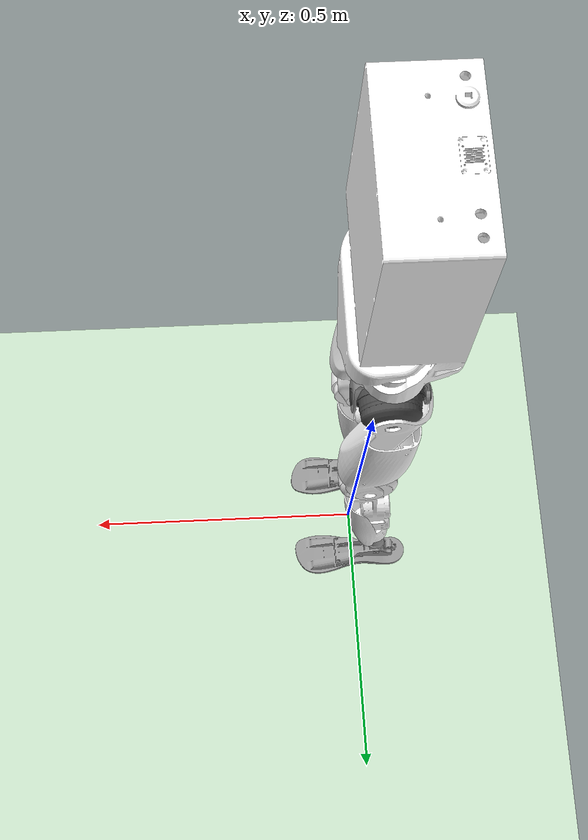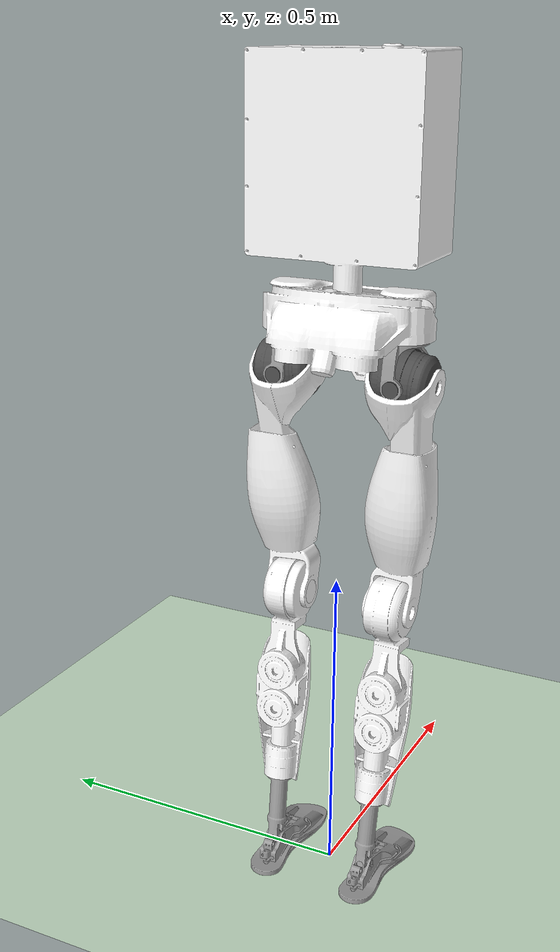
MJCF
<mujoco model="fdrobot_t1">
  <compiler angle="radian" meshdir="../meshes" autolimits="true" discardvisual="false"/>
  <option timestep='0.001' iterations='50' solver='PGS' gravity='0 0 -9.81'>
  <flag frictionloss="enable"/>
  </option>
  <size njmax="500" nconmax="100" />

  <default>
    <joint limited="true" pos="0 0 0"/>
    <motor ctrllimited='true'/>
    <geom friction='1.0 1.0 1.0'/>
    <default class="visual">
      <geom group="0" conaffinity="0" contype="0" condim='1' type="mesh"/>
    </default>
    <default class="collision">
      <geom group="1" condim="3" type="mesh"/>
    </default>
  </default>

  <asset>
    <mesh name="base_link" file="base_link_half.STL"/>
    <mesh name="R_hipY_Link" file="R_hipY_Link.STL"/>
    <mesh name="R_hipR_Link" file="R_hipR_Link.STL"/>
    <mesh name="R_hipP_Link" file="R_hipP_Link.STL"/>
    <mesh name="R_knee_Link" file="R_knee_Link.STL"/>
    <mesh name="R_ankleY_Link" file="R_ankleY_Link.STL"/>
    <mesh name="R_ankleR_Link" file="R_ankleR_Link.STL"/>
    <mesh name="R_ankleP_Link" file="R_ankleP_Link.STL"/>
    <mesh name="R_ankleP_Link_c" file="R_ankleP_Link.obj"/>
    <mesh name="L_hipY_Link" file="L_hipY_Link.STL"/>
    <mesh name="L_hipR_Link" file="L_hipR_Link.STL"/>
    <mesh name="L_hipP_Link" file="L_hipP_Link.STL"/>
    <mesh name="L_knee_Link" file="L_knee_Link.STL"/>
    <mesh name="L_ankleY_Link" file="L_ankleY_Link.STL"/>
    <mesh name="L_ankleR_Link" file="L_ankleR_Link.STL"/>
    <mesh name="L_ankleP_Link" file="L_ankleP_Link.STL"/>
    <mesh name="L_ankleP_Link_c" file="L_ankleP_Link.obj"/>
    <texture builtin="gradient" height="100" rgb1=".4 .5 .6" rgb2="0 0 0" type="skybox" width="100"/>
    <texture name="texplane" type="2d" builtin="checker" rgb1=".2 .3 .4" rgb2=".1 0.15 0.2" width="100" height="100"/>
    <material name="MatPlane" reflectance="0.5" texture="texplane" texrepeat="1 1" texuniform="true"/>
  </asset>

  <contact>
    <exclude body1="base_link" body2="R_hipY_Link" />
    <exclude body1="base_link" body2="R_hipR_Link" />
    <exclude body1="base_link" body2="R_hipP_Link" />
    <exclude body1="base_link" body2="L_hipY_Link" />
    <exclude body1="base_link" body2="L_hipR_Link" />
    <exclude body1="base_link" body2="L_hipP_Link" />
    <exclude body1="R_hipP_Link" body2="R_hipY_Link" />
    <exclude body1="L_hipP_Link" body2="L_hipY_Link" />
    <exclude body1="R_ankleY_Link" body2="R_ankleP_Link" />
    <exclude body1="L_ankleY_Link" body2="L_ankleP_Link" />
  </contact>

  <worldbody>
    <geom name="floor" friction="1 .8 .8" pos="0 0 0" size="500 500 0.125" type="plane" material="MatPlane" condim="3" conaffinity="1" contype="1" group="2" rgba="0.8 0.9 0.8 1"></geom>
    <light cutoff="100" diffuse="1 1 1" dir="-0 0 -1.3" directional="true" exponent="1" pos="0 0 1.3" specular=".1 .1 .1" castshadow="false"/>
    <body name="base_link" pos="0 0 0.9">
      <inertial pos="-0.01792 -0.00116544 0.16046544" mass="14.48" diaginertia="0.30956858 0.26039718 0.10594006"/>
      <joint name="pelvis_tx" type="slide" pos="0 0 0" axis="       1        0        0" limited="false" range="      -500        500" ref="0" armature="0" damping="0" stiffness="0"></joint>
      <joint name="pelvis_tz" type="slide" pos="0 0 0" axis="       0        1        0" limited="false" range="      -300        300" ref="0" armature="0" damping="0" stiffness="0"></joint>
      <joint name="pelvis_ty" type="slide" pos="0 0 0" axis="       0        0        1" limited="false" range="      -100        200" ref="0" armature="0" damping="0" stiffness="0"></joint>
      <joint name="pelvis_tilt" type="hinge" pos="0 0 0" axis="       0        -1        0" limited="false" range=" -1.5708   1.5708" ref="0" armature="0" damping="0" stiffness="0"></joint>
      <joint name="pelvis_list" type="hinge" pos="0 0 0" axis="       1        0        0" limited="false" range=" -1.5708   1.5708" ref="0" armature="0" damping="0" stiffness="0"></joint>
      <joint name="pelvis_rotation" type="hinge" pos="0 0 0" axis="       0        0        1" limited="false" range=" -1.5708   1.5708" ref="0" armature="0" damping="0" stiffness="0"></joint>
      <geom class="visual" rgba="1.5 1.5 1.5 1" mesh="base_link"/>
      <geom class="collision" rgba="1.5 1.5 1.5 1" mesh="base_link"/>
      <site name='imu' size='0.01' pos='0.0 0 0.0' />
      <body name="L_hipY_Link" pos="0.01584881 0.087 -0.0106761" quat="0.999977 0 0 0.00675242">
        <inertial pos="-0.00846725 0.00122011 -0.0337378" quat="0.42147 0.570438 0.486911 0.509784" mass="0.135" diaginertia="0.000175092 0.000141954 0.000100044"/>
        <joint name="leg_left_hipy"  axis="0 0 1" range="-0.5 0.5" armature="1.3" frictionloss="6"  damping="2.5"/>
        <geom class="visual" rgba="0.6 0.6 0.6 1" mesh="L_hipY_Link"/>
        <geom class="collision" rgba="0.6 0.6 0.6 1" mesh="L_hipY_Link"/>
        <body name="L_hipR_Link" pos="0.000489751 0.006 -0.063" euler="-0.073848446215598 0 0">
          <inertial pos="0.00520149 -4.1e-07 1.63e-05" quat="-0.000402195 0.707107 -0.000402195 0.707107" mass="2.13" diaginertia="0.00250818 0.00235874 0.00225394"/>
          <joint name="leg_left_hipr" axis="1 0 0" range="-0.3 0.5" armature="0.3" frictionloss="4" damping="15"/>
          <geom class="visual" rgba="0.3 0.3 0.3 1" mesh="L_hipR_Link"/>
          <geom class="collision" rgba="0.3 0.3 0.3 1" mesh="L_hipR_Link"/>
          <body name="L_hipP_Link" pos="0.000750249 0.000605 0" euler="0 -0.221180468392862 0">
            <inertial pos="-0.0505661 0.0126985 -0.193921" quat="0.995027 0.0319995 0.0870331 0.0363737" mass="1.54" diaginertia="0.0183267 0.0181132 0.00210226"/>
            <joint name="leg_left_hipp"  axis="0 -1 0" range="-0.3 1.0" armature="2.5" frictionloss="8." damping="17.5"/>
            <geom class="visual" rgba="1.5 1.5 1.5 1" mesh="L_hipP_Link"/>
            <geom class="collision" rgba="1.5 1.5 1.5 1" mesh="L_hipP_Link"/>
            <body name="L_knee_Link" pos="-0.0830043 0.0150331 -0.349141" euler="0.0602241343835302 0.401634851584503 -0.00375354549252036">
              <inertial pos="-0.00233767 0.00884361 -0.14667" quat="0.694289 -0.0194318 -0.0291511 0.718844" mass="3.02" diaginertia="0.0306188 0.0303396 0.00264269"/>
              <joint name="leg_left_knee"  axis="0 1 0" range="-0.  1.0"  armature="1.6" frictionloss="8.5" damping="6.5"/>
              <geom class="visual" rgba="1.5 1.5 1.5 1" mesh="L_knee_Link"/>
              <geom class="collision" rgba="1.5 1.5 1.5 1" mesh="L_knee_Link"/>
              <body name="L_ankleY_Link" pos="0.0157753 0.0045 -0.318443" quat="0.999935 1.80176e-07 -0.0113685 1.58476e-05">
                <inertial pos="-1.144e-05 -0.00010759 -0.0548204" quat="0.707107 0 0 0.707107" mass="0.11" diaginertia="0.00011929 0.00011813 1.839e-05"/>
                <geom class="visual" rgba="0.6 0.6 0.6 1" mesh="L_ankleY_Link"/>
                <geom class="collision" rgba="0.6 0.6 0.6 1" mesh="L_ankleY_Link"/>
                <body name="L_ankleR_Link" pos="0.001 0 -0.109" quat="0.999975 -0.00708668 0 0">
                  <inertial pos="-6e-07 3.42e-06 2.51e-06" quat="0.5 0.5 -0.5 0.5" mass="0.032" diaginertia="2.72e-06 1.71e-06 1.71e-06"/>
                  <joint name="leg_left_ankler"  axis="1 0 0" range="-0.3 0.3"  armature="0.45" frictionloss="5." damping="3."/>
                  <geom class="visual" rgba="0.6 0.6 0.6 1" mesh="L_ankleR_Link"/>
                  <geom class="collision" rgba="0.6 0.6 0.6 1" mesh="L_ankleR_Link"/>
                  <body name="L_ankleP_Link" euler="0.03 -0.165 0">
                    <inertial pos="0.0337068 0.00066451 -0.0253885" quat="0.01863 0.713852 0.0305994 0.699379" mass="0.38" diaginertia="0.000789094 0.000760761 0.000118106"/>
                    <joint name="leg_left_anklep"  axis="0 -1 0" range="-0.5 0.5" armature="0.9" frictionloss="5." damping="12"/>
                    <geom class="visual" rgba="0.6 0.6 0.6 1" mesh="L_ankleP_Link"/>
                    <geom class="collision" rgba="0.6 0.6 0.6 1" mesh="L_ankleP_Link"/>
                    <site name="lf_force" size="0.01" pos="0.0 0.0 0.0" />
                  </body>
                </body>
              </body>
            </body>
          </body>
        </body>
      </body>
      <body name="R_hipY_Link" pos="0.01584881 -0.087 -0.0106761" quat="0.999977 0 0 -0.00675242">
        <inertial pos="-0.00690057 -0.00103408 -0.0329926" quat="0.509784 0.486911 0.570438 0.42147" mass="0.135" diaginertia="0.000175092 0.000141954 0.000100044"/>
        <joint name="leg_right_hipy" axis="0 0 -1"  range="-0.5 0.5" armature="1.3" frictionloss="6"  damping="2.5"/>
        <geom class="visual" rgba="0.6 0.6 0.6 1" mesh="R_hipY_Link"/>
        <body name="R_hipR_Link" pos="0.000489751 -0.006 -0.063" euler="0.073848446215598 0 0">
          <inertial pos="0.00515634 -1.035e-05 1.63e-05" quat="-0.000402195 0.707107 -0.000402195 0.707107" mass="2.13" diaginertia="0.00250818 0.00235874 0.00225394"/>
          <joint name="leg_right_hipr"  axis="-1 0 0" range="-0.3 0.5" armature="0.3" frictionloss="4" damping="15"/>
          <geom class="visual" rgba="0.3 0.3 0.3 1" mesh="R_hipR_Link"/>
          <geom class="collision" rgba="0.3 0.3 0.3 1" mesh="R_hipR_Link"/>
          <body name="R_hipP_Link" pos="0.000750249 -0.000605 0" euler="0 -0.221180468392862 0">
            <inertial pos="-0.0505279 -0.0127896 -0.193489" quat="0.995023 -0.0320105 0.0870352 -0.0364497" mass="1.54" diaginertia="0.0183274 0.0181139 0.00210231"/>
            <joint name="leg_right_hipp"  axis="0 -1 0" range="-0.3  1.0" armature="2.5" frictionloss="8." damping="17.5"/>
            <geom class="visual" rgba="1.5 1.5 1.5 1" mesh="R_hipP_Link"/>
            <geom class="collision" rgba="1.5 1.5 1.5 1" mesh="R_hipP_Link"/>
            <body name="R_knee_Link" pos="-0.0830043 -0.0150331 -0.349141" euler="-0.0602241343835302 0.401634851584503 0.00375354549252053">
              <inertial pos="-0.00231537 -0.00881299 -0.146801" quat="0.718841 -0.0291515 -0.0194313 0.694291" mass="3.02" diaginertia="0.0306189 0.0303396 0.00264269"/>
              <joint name="leg_right_knee" axis="0 1 0" range="-0. 1.0" armature="1.6" frictionloss="8.5" damping="6.5"/>
              <geom class="visual" rgba="1.5 1.5 1.5 1" mesh="R_knee_Link"/>
              <geom class="collision" rgba="1.5 1.5 1.5 1" mesh="R_knee_Link"/>
              <body name="R_ankleY_Link" pos="0.0157753 -0.0045 -0.318443" quat="0.999935 -1.80176e-07 -0.0113685 -1.58476e-05">
                <inertial pos="-1.146e-05 0.00015459 -0.0549323" quat="0.707107 0 0 0.707107" mass="0.11" diaginertia="0.00011929 0.00011813 1.839e-05"/>
                <geom class="visual" rgba="0.6 0.6 0.6 1" mesh="R_ankleY_Link"/>
                <geom class="collision" rgba="0.6 0.6 0.6 1" mesh="R_ankleY_Link"/>
                <body name="R_ankleR_Link" pos="0.001 0 -0.109" quat="0.999975 0.00708668 0 0">
                  <inertial pos="-6e-07 -6.65e-06 2.51e-06" quat="0.5 0.5 -0.5 0.5" mass="0.032" diaginertia="2.72e-06 1.71e-06 1.71e-06"/>
                  <joint name="leg_right_ankler" axis="-1 0 0" range="-0.3 0.3" armature="0.45" frictionloss="5." damping="3."/>
                  <geom class="visual" rgba="0.6 0.6 0.6 1" mesh="R_ankleR_Link"/>
                  <geom class="collision" rgba="0.6 0.6 0.6 1" mesh="R_ankleR_Link"/>
                  <body name="R_ankleP_Link" euler="-0.03 -0.165 0">
                    <inertial pos="0.032887 -0.00059932 -0.0262722" quat="-0.0182088 0.722969 -0.0308234 0.689952" mass="0.38" diaginertia="0.000789094 0.000760761 0.000118105"/>
                    <joint name="leg_right_anklep" axis="0 -1 0" range="-0.5 0.5" armature="0.9" frictionloss="5." damping="12"/>
                    <geom class="visual" rgba="0.6 0.6 0.6 1" mesh="R_ankleP_Link"/>
                    <geom class="collision" rgba="0.6 0.6 0.6 1" mesh="R_ankleP_Link"/>
                    <site name="rf_force" size="0.01" pos="0.0 0.0 0.0" />
                  </body>
                </body>
              </body>
            </body>
          </body>
        </body>
      </body>
    </body>
  </worldbody>

  <actuator>
      <motor name="leg_left_hipy_motor" joint="leg_left_hipy" gear="1" ctrllimited="true" ctrlrange="-127 127"/>
      <motor name="leg_left_hipr_motor" joint="leg_left_hipr"  gear="1" ctrllimited="true" ctrlrange="-450 450"/>
      <motor name="leg_left_hipp_motor" joint="leg_left_hipp"  gear="1" ctrllimited="true" ctrlrange="-450 450"/>
      <motor name="leg_left_knee_motor" joint="leg_left_knee"  gear="1" ctrllimited="true" ctrlrange="-135 135"/>
      <motor name="leg_left_ankler_motor" joint="leg_left_ankler"  gear="1" ctrllimited="true" ctrlrange="-148 148"/>
      <motor name="leg_left_anklep_motor" joint="leg_left_anklep"  gear="1" ctrllimited="true" ctrlrange="-148 148"/>
      <motor name="leg_right_hipy_motor" joint="leg_right_hipy" gear="1" ctrllimited="true" ctrlrange="-127 127"/>
      <motor name="leg_right_hipr_motor" joint="leg_right_hipr"  gear="1" ctrllimited="true" ctrlrange="-450 450"/>
      <motor name="leg_right_hipp_motor" joint="leg_right_hipp"  gear="1" ctrllimited="true" ctrlrange="-450 450"/>
      <motor name="leg_right_knee_motor" joint="leg_right_knee" gear="1" ctrllimited="true" ctrlrange="-135 135"/>
      <motor name="leg_right_ankler_motor" joint="leg_right_ankler" gear="1" ctrllimited="true" ctrlrange="-148 148"/>
      <motor name="leg_right_anklep_motor" joint="leg_right_anklep"  gear="1" ctrllimited="true" ctrlrange="-148 148"/>
  </actuator>

  <sensor>
      <framequat     name='orientation' objtype='site' noise='0.01' objname='imu'/>
      <framepos     name='position' objtype='site' noise='0.01' objname='imu'/>
      <gyro          name='angular-velocity'    site='imu' noise='0.05' cutoff='34.9'/>
      <velocimeter   name='linear-velocity'     site='imu' noise='0.01' cutoff='30'/>
      <accelerometer name='linear-acceleration' site='imu' noise='0.05' cutoff='157'/>
      <magnetometer  name='magnetometer'        site='imu'/>
      <framepos     name='positionl' objtype='site' objname='lf_force'/>
      <framepos     name='positionr' objtype='site' objname='rf_force'/>
      <framequat     name='orientationl' objtype='site' objname='lf_force'/>
      <framequat     name='orientationr' objtype='site' objname='rf_force'/>
      <!-- right foot -->
      <force name="RightFootForceSensor_fsensor" site="rf_force" />
      <torque name="RightFootForceSensor_tsensor" site="rf_force" />
      <!-- left foot -->
      <force name="LeftFootForceSensor_fsensor" site="lf_force" />
      <torque name="LeftFootForceSensor_tsensor" site="lf_force" />
  </sensor>
</mujoco>
